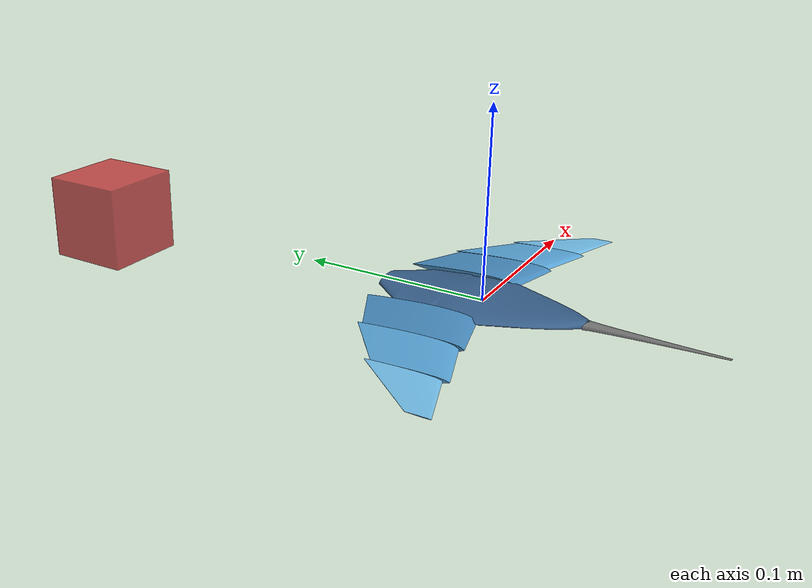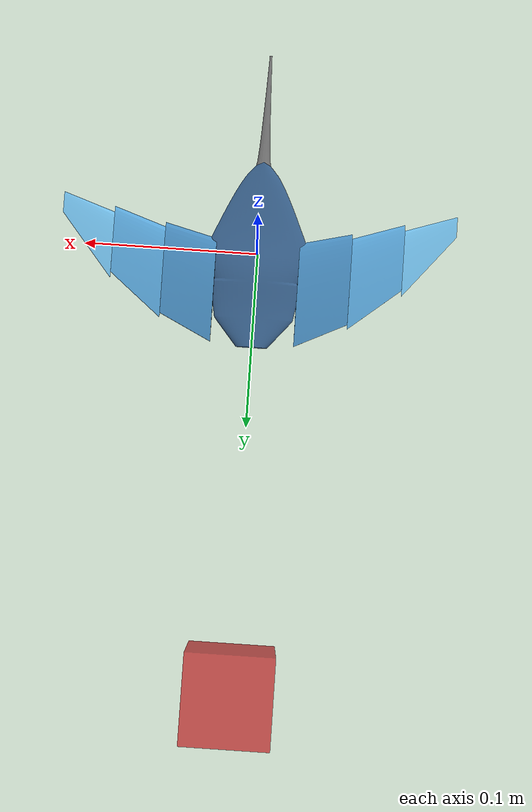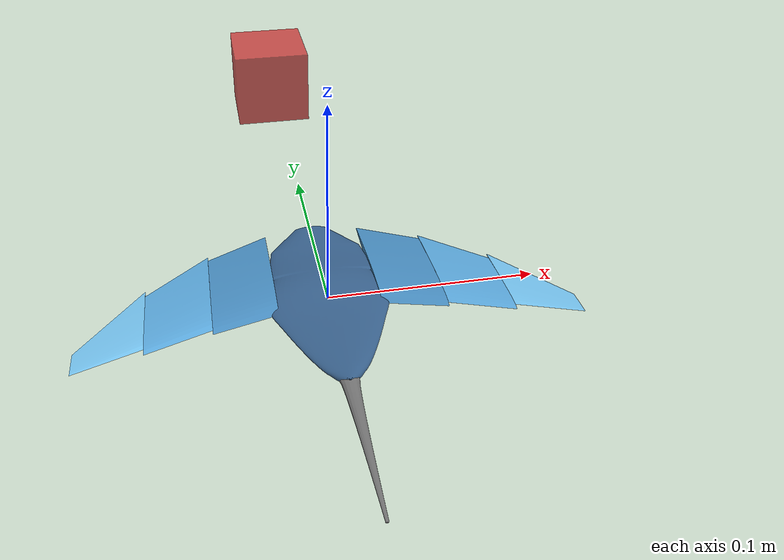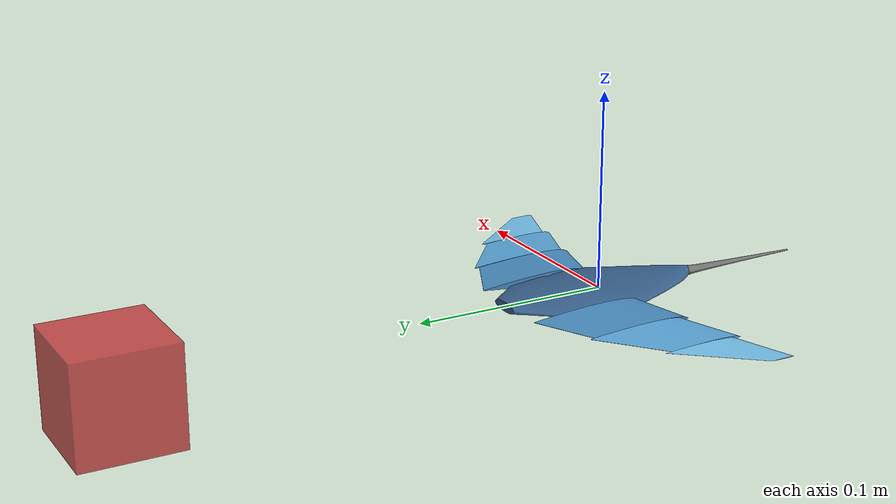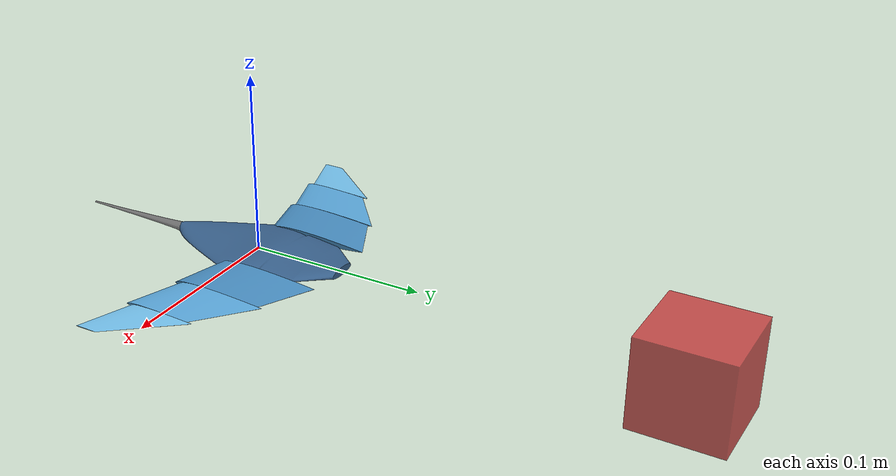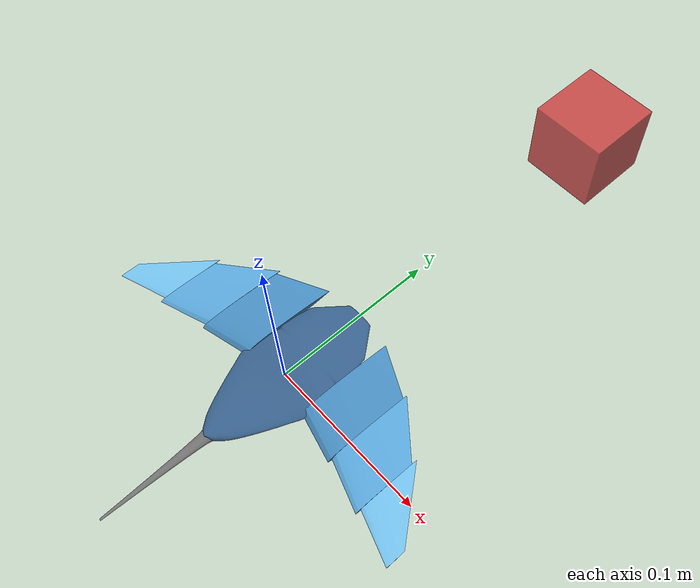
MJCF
<mujoco model="MantaRay3D_Swimmer_Obstacle">

    <compiler angle="degree" inertiafromgeom="true" meshdir="../manta/meshes/"/>
    <option timestep="0.01" gravity="0 0 0" integrator="RK4"/>

    <default>
        <joint damping="0.36" stiffness="0" armature="0.07"/>
        <motor ctrlrange="-1 1" ctrllimited="true"/>
        <geom solref="0.002 1" solimp="0.9 0.95 0.001"/>
    </default>

    <asset>
        <material name="body_mat"      rgba="0.22 0.38 0.55 1"/>
        <material name="wing_root_mat" rgba="0.28 0.55 0.75 1"/>
        <material name="wing_mid_mat"  rgba="0.35 0.65 0.85 1"/>
        <material name="wing_tip_mat"  rgba="0.45 0.75 0.92 1"/>
        <material name="tail_mat"      rgba="0.45 0.45 0.45 1"/>
        <material name="obstacle_mat"  rgba="0.8 0.2 0.2 0.8"/>

        <mesh name="body_mesh"        file="manta_body.stl"           scale="1.2 1.2 1.2"/>
        <mesh name="wing_root_R_mesh" file="manta_wing_root.stl"      scale="1.2 1.2 1.2"/>
        <mesh name="wing_mid_R_mesh"  file="manta_wing_mid.stl"       scale="1.2 1.2 1.2"/>
        <mesh name="wing_tip_R_mesh"  file="manta_wing_tip.stl"       scale="1.2 1.2 1.2"/>
        <mesh name="wing_root_L_mesh" file="manta_wing_root_L.stl"    scale="1.2 1.2 1.2"/>
        <mesh name="wing_mid_L_mesh"  file="manta_wing_mid_L.stl"     scale="1.2 1.2 1.2"/>
        <mesh name="wing_tip_L_mesh"  file="manta_wing_tip_L.stl"     scale="1.2 1.2 1.2"/>
        <mesh name="tail_mesh"        file="manta_tail.stl"           scale="1.2 1.2 1.2"/>
    </asset>

    <worldbody>
        <!-- ========== Obstacle (static, no joint) ========== -->
        <!-- Position: scene center, between manta start and goal -->
        <!-- Manta root at normalized y=0.25 (grid 75), goal at y=0.75 (grid 225) -->
        <!-- Obstacle at MuJoCo Y=0.25 → LBM Y=75+0.25*300=150 → normalized y=0.50 (center) -->
        <body name="obstacle" pos="0.0 0.25 0.0">
            <!-- No joint = fixed in world frame, does not move -->
            <geom name="obstacle_geom" type="box"
                  size="0.025 0.025 0.025"
                  pos="0 0 0"
                  material="obstacle_mat"
                  density="8000"
                  contype="1" conaffinity="1"/>
        </body>

        <!-- ========== Manta Ray Body ========== -->
        <body name="body" pos="0 0 0">
            <freejoint name="root_joint"/>

            <geom name="body_geom" type="mesh" mesh="body_mesh"
                  material="body_mat" density="4500"/>

            <!-- ============ RIGHT WING ============ -->
            <body name="wing_root_R" pos="0.024 0.010 0">
                <joint name="wr_R_flap" type="hinge" axis="0 1 0"
                       limited="true" range="-45 45"/>

                <geom name="wr_R_geom" type="mesh" mesh="wing_root_R_mesh"
                      material="wing_root_mat" density="3000"/>

                <body name="wing_mid_R" pos="0.030 -0.007 0">
                    <joint name="wm_R_flap" type="hinge" axis="0 1 0"
                           limited="true" range="-50 50"/>
                    <joint name="wm_R_twist" type="hinge" axis="1 0 0"
                           limited="true" range="-25 25"/>

                    <geom name="wm_R_geom" type="mesh" mesh="wing_mid_R_mesh"
                          material="wing_mid_mat" density="2200"/>

                    <body name="wing_tip_R" pos="0.030 -0.011 0">
                        <joint name="wt_R_flap" type="hinge" axis="0 1 0"
                               limited="true" range="-55 55"/>
                        <joint name="wt_R_twist" type="hinge" axis="1 0 0"
                               limited="true" range="-30 30"/>

                        <geom name="wt_R_geom" type="mesh" mesh="wing_tip_R_mesh"
                              material="wing_tip_mat" density="1500"/>
                    </body>
                </body>
            </body>

            <!-- ============ LEFT WING ============ -->
            <body name="wing_root_L" pos="-0.024 0.010 0">
                <joint name="wr_L_flap" type="hinge" axis="0 1 0"
                       limited="true" range="-45 45"/>

                <geom name="wr_L_geom" type="mesh" mesh="wing_root_L_mesh"
                      material="wing_root_mat" density="3000"/>

                <body name="wing_mid_L" pos="-0.030 -0.007 0">
                    <joint name="wm_L_flap" type="hinge" axis="0 1 0"
                           limited="true" range="-50 50"/>
                    <joint name="wm_L_twist" type="hinge" axis="1 0 0"
                           limited="true" range="-25 25"/>

                    <geom name="wm_L_geom" type="mesh" mesh="wing_mid_L_mesh"
                          material="wing_mid_mat" density="2200"/>

                    <body name="wing_tip_L" pos="-0.030 -0.011 0">
                        <joint name="wt_L_flap" type="hinge" axis="0 1 0"
                               limited="true" range="-55 55"/>
                        <joint name="wt_L_twist" type="hinge" axis="1 0 0"
                               limited="true" range="-30 30"/>

                        <geom name="wt_L_geom" type="mesh" mesh="wing_tip_L_mesh"
                              material="wing_tip_mat" density="1500"/>
                    </body>
                </body>
            </body>

            <!-- ============ TAIL ============ -->
            <body name="tail" pos="0 -0.052 0">
                <joint name="tail_yaw" type="hinge" axis="0 0 1"
                       limited="true" range="-40 40"/>

                <geom name="tail_geom" type="mesh" mesh="tail_mesh"
                      material="tail_mat" density="1800"/>
            </body>
        </body>

        <light directional="true" diffuse="0.9 0.9 0.9" pos="0 0 3" dir="0 0 -1"/>
    </worldbody>

    <actuator>
        <!-- Right wing: 1+2+2 = 5 DOFs -->
        <position name="pos_wr_R_flap"  joint="wr_R_flap"  kp="1.1" kv="0.15"
                  ctrlrange="-0.785 0.785" forcerange="-0.7 0.7"/>
        <position name="pos_wm_R_flap"  joint="wm_R_flap"  kp="0.8" kv="0.12"
                  ctrlrange="-0.873 0.873" forcerange="-0.5 0.5"/>
        <position name="pos_wm_R_twist" joint="wm_R_twist" kp="0.5" kv="0.09"
                  ctrlrange="-0.436 0.436" forcerange="-0.35 0.35"/>
        <position name="pos_wt_R_flap"  joint="wt_R_flap"  kp="0.5" kv="0.09"
                  ctrlrange="-0.960 0.960" forcerange="-0.35 0.35"/>
        <position name="pos_wt_R_twist" joint="wt_R_twist" kp="0.35" kv="0.06"
                  ctrlrange="-0.524 0.524" forcerange="-0.2 0.2"/>

        <!-- Left wing: 1+2+2 = 5 DOFs -->
        <position name="pos_wr_L_flap"  joint="wr_L_flap"  kp="1.1" kv="0.15"
                  ctrlrange="-0.785 0.785" forcerange="-0.7 0.7"/>
        <position name="pos_wm_L_flap"  joint="wm_L_flap"  kp="0.8" kv="0.12"
                  ctrlrange="-0.873 0.873" forcerange="-0.5 0.5"/>
        <position name="pos_wm_L_twist" joint="wm_L_twist" kp="0.5" kv="0.09"
                  ctrlrange="-0.436 0.436" forcerange="-0.35 0.35"/>
        <position name="pos_wt_L_flap"  joint="wt_L_flap"  kp="0.5" kv="0.09"
                  ctrlrange="-0.960 0.960" forcerange="-0.35 0.35"/>
        <position name="pos_wt_L_twist" joint="wt_L_twist" kp="0.35" kv="0.06"
                  ctrlrange="-0.524 0.524" forcerange="-0.2 0.2"/>

        <!-- Tail: 1 DOF -->
        <position name="pos_tail_yaw" joint="tail_yaw" kp="0.65" kv="0.11"
                  ctrlrange="-0.698 0.698" forcerange="-0.4 0.4"/>
    </actuator>
</mujoco>
